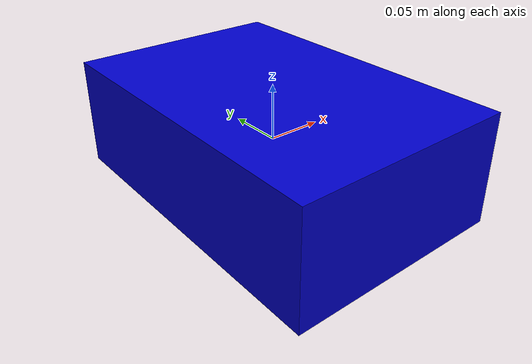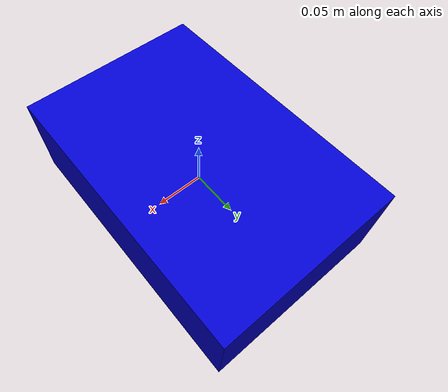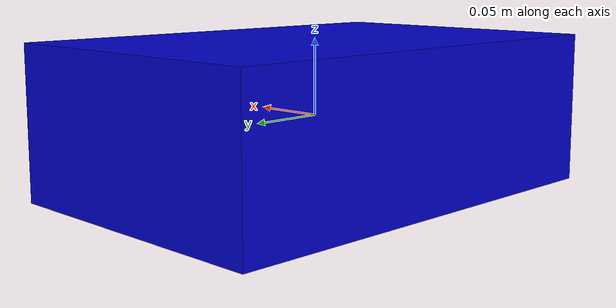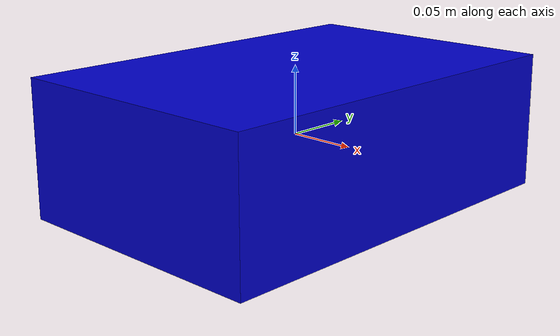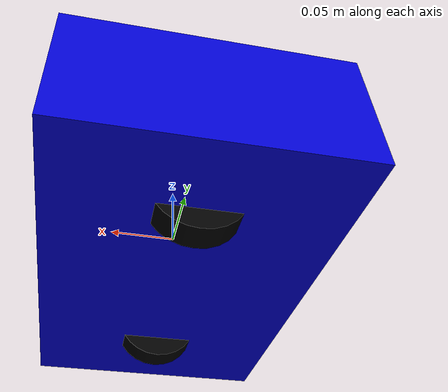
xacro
<?xml version="1.0"?>
<robot xmlns:xacro="http://www.ros.org/wiki/xacro" name="diffbot">

  <xacro:include filename="$(find diff_drive_hardware)/config/diffbot_description.xacro" />

  <ros2_control name="DiffBot" type="system">
    <hardware>
      <plugin>diff_drive_hardware/DiffDriveHardware</plugin>
      <param name="wheel_radius">0.033</param>
      <param name="wheel_separation">0.17</param>
    </hardware>
    <joint name="left_wheel_joint">
      <command_interface name="velocity"/>
      <state_interface name="position"/>
      <state_interface name="velocity"/>
    </joint>
    <joint name="right_wheel_joint">
      <command_interface name="velocity"/>
      <state_interface name="position"/>
      <state_interface name="velocity"/>
    </joint>
  </ros2_control>

  <gazebo>
    <plugin name="gazebo_ros2_control" filename="libgazebo_ros2_control.so">
      <parameters>$(find diff_drive_hardware)/config/diffbot_controllers.yaml</parameters>
    </plugin>
  </gazebo>

</robot>

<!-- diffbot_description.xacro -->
<robot xmlns:xacro="http://www.ros.org/wiki/xacro">

  <!-- Base Link -->
  <link name="base_link">
    <visual>
      <geometry>
        <box size="0.2 0.3 0.1"/>
      </geometry>
      <material name="blue">
        <color rgba="0 0 0.8 1"/>
      </material>
    </visual>
    <collision>
      <geometry>
        <box size="0.2 0.3 0.1"/>
      </geometry>
    </collision>
    <inertial>
      <mass value="1.0"/>
      <inertia ixx="0.0166667" ixy="0" ixz="0" iyy="0.0166667" iyz="0" izz="0.0166667"/>
    </inertial>
  </link>

  <!-- Left Wheel -->
  <link name="left_wheel">
    <visual>
      <geometry>
        <cylinder radius="0.033" length="0.02"/>
      </geometry>
      <material name="black">
        <color rgba="0 0 0 1"/>
      </material>
    </visual>
    <collision>
      <geometry>
        <cylinder radius="0.033" length="0.02"/>
      </geometry>
    </collision>
    <inertial>
      <mass value="0.1"/>
      <inertia ixx="0.00003" ixy="0" ixz="0" iyy="0.00003" iyz="0" izz="0.00005"/>
    </inertial>
  </link>

  <!-- Right Wheel -->
  <link name="right_wheel">
    <visual>
      <geometry>
        <cylinder radius="0.033" length="0.02"/>
      </geometry>
      <material name="black">
        <color rgba="0 0 0 1"/>
      </material>
    </visual>
    <collision>
      <geometry>
        <cylinder radius="0.033" length="0.02"/>
      </geometry>
    </collision>
    <inertial>
      <mass value="0.1"/>
      <inertia ixx="0.00003" ixy="0" ixz="0" iyy="0.00003" iyz="0" izz="0.00005"/>
    </inertial>
  </link>

  <!-- Left Wheel Joint -->
  <joint name="left_wheel_joint" type="continuous">
    <parent link="base_link"/>
    <child link="left_wheel"/>
    <origin xyz="0 0.085 -0.033" rpy="-1.5707 0 0"/>
    <axis xyz="0 0 1"/>
  </joint>

  <!-- Right Wheel Joint -->
  <joint name="right_wheel_joint" type="continuous">
    <parent link="base_link"/>
    <child link="right_wheel"/>
    <origin xyz="0 -0.085 -0.033" rpy="-1.5707 0 0"/>
    <axis xyz="0 0 1"/>
  </joint>

</robot>
